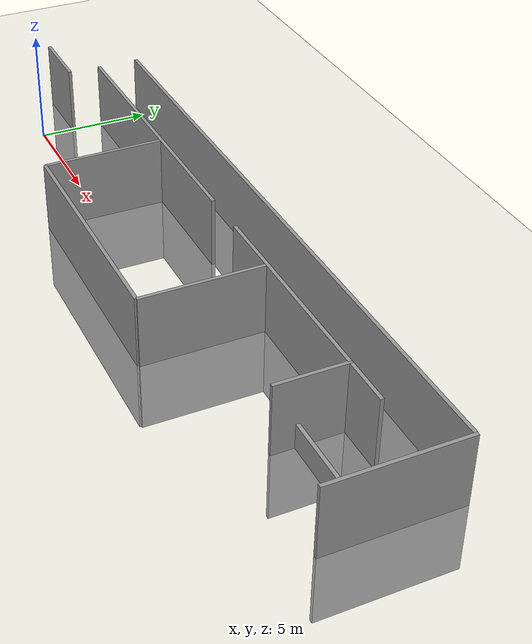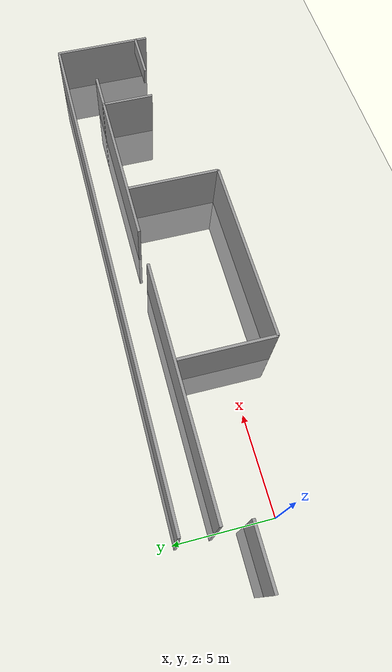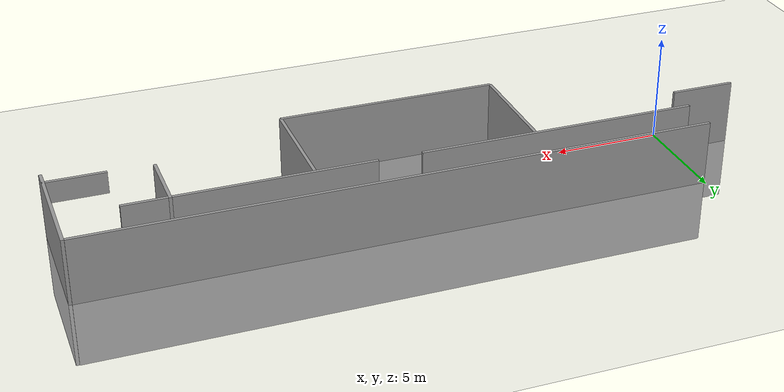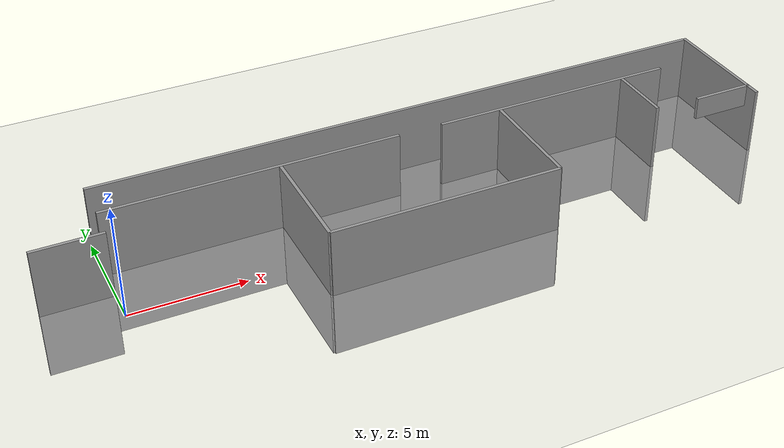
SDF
<sdf version="1.6">
 <world name="default">
  <light name="sun" type="directional">
   <cast_shadows>0</cast_shadows>
   <pose>0 0 10 0 -0 0</pose>
   <diffuse>0.8 0.8 0.8 1</diffuse>
   <specular>0.1 0.1 0.1 1</specular>
   <attenuation>
    <range>1000</range>
    <constant>0.9</constant>
    <linear>0.01</linear>
    <quadratic>0.001</quadratic>
   </attenuation>
   <direction>-0.5 0.5 -1</direction>
  </light>
  <model name="ground_plane">
   <static>1</static>
   <link name="link">
    <collision name="collision">
     <geometry><plane><normal>0 0 1</normal><size>100 100</size></plane></geometry>
     <surface><friction><ode><mu>100</mu><mu2>50</mu2></ode></friction></surface>
    </collision>
    <visual name="visual">
     <cast_shadows>0</cast_shadows>
     <geometry><plane><normal>0 0 1</normal><size>100 100</size></plane></geometry>
     <material>
      <script><uri>file://media/materials/scripts/gazebo.material</uri><name>Gazebo/Grey</name></script>
     </material>
    </visual>
   </link>
  </model>
  <gravity>0 0 -9.8</gravity>
  <magnetic_field>6e-06 2.3e-05 -4.2e-05</magnetic_field>
  <atmosphere type="adiabatic"/>
  <physics name="default_physics" default="0" type="ode">
   <max_step_size>0.001</max_step_size>
   <real_time_factor>1</real_time_factor>
   <real_time_update_rate>1000</real_time_update_rate>
  </physics>
  <scene><ambient>0.4 0.4 0.4 1</ambient><background>0.7 0.7 0.7 1</background><shadows>1</shadows></scene>
  <spherical_coordinates>
   <surface_model>EARTH_WGS84</surface_model>
   <latitude_deg>0</latitude_deg>
   <longitude_deg>0</longitude_deg>
   <elevation>0</elevation>
   <heading_deg>0</heading_deg>
  </spherical_coordinates>
  <model name="Corridor">
   <static>1</static>
   <link name="Wall_1">
    <pose>0 1.5 0 0 0 1.57</pose>
    <collision name="Wall_1_Collision">
     <geometry><box><size>3 0.15 6</size></box></geometry>
     <pose>0 1.5 0 0 0 1.57</pose>
    </collision>
    <visual name="Wall_1_Visual">
     <pose>0 1.5 0 0 0 0</pose>
     <geometry><box><size>0.15 3 6</size></box></geometry>
     <material>
      <script><uri>file://media/materials/scripts/gazebo.material</uri><name>Gazebo/Grey</name></script>
      <ambient>1 1 1 1</ambient>
     </material>
    </visual>
    <pose>0 1.5 0 0 0 0</pose>
   </link>
   <link name="Wall_2">
    <pose>6.5 2.925 0 0 0 0</pose>
    <collision name="Wall_2_Collision"><geometry><box><size>13 0.15 6</size></box></geometry></collision>
    <visual name="Wall_2_Visual">
     <geometry><box><size>13 0.15 6</size></box></geometry>
     <material>
      <script><uri>file://media/materials/scripts/gazebo.material</uri><name>Gazebo/Grey</name></script>
      <ambient>1 1 1 1</ambient>
     </material>
    </visual>
   </link>
   <link name="Wall_10">
    <pose>20.55 2.925 0 0 0 0</pose>
    <collision name="Wall_2_Collision"><geometry><box><size>11.11 0.15 6</size></box></geometry></collision>
    <visual name="Wall_2_Visual">
     <geometry><box><size>11.11 0.15 6</size></box></geometry>
     <material>
      <script><uri>file://media/materials/scripts/gazebo.material</uri><name>Gazebo/Grey</name></script>
      <ambient>1 1 1 1</ambient>
     </material>
    </visual>
   </link>
   <link name="Wall_3">
    <pose>14.325 4.755 0 0 0 0</pose>
    <collision name="Wall_3_Collision"><geometry><box><size>28.65 0.15 6</size></box></geometry></collision>
    <visual name="Wall_3_Visual">
     <geometry><box><size>28.65 0.15 6</size></box></geometry>
     <material>
      <script><uri>file://media/materials/scripts/gazebo.material</uri><name>Gazebo/Grey</name></script>
      <ambient>1 1 1 1</ambient>
     </material>
    </visual>
   </link>
   <link name="Wall_4">
    <pose>28.725 2.025 0 0 0 0</pose>
    <collision name="Wall_4_Collision"><geometry><box><size>0.15 5.57 6</size></box></geometry></collision>
    <visual name="Wall_4_Visual">
     <geometry><box><size>0.15 5.57 6</size></box></geometry>
     <material>
      <script><uri>file://media/materials/scripts/gazebo.material</uri><name>Gazebo/Grey</name></script>
      <ambient>1 1 1 1</ambient>
     </material>
    </visual>
   </link>
   <link name="Wall_5">
    <pose>24.025 1.5 0 0 0 0</pose>
    <collision name="Wall_5_Collision"><geometry><box><size>0.15 3 6</size></box></geometry></collision>
    <visual name="Wall_5_Visual">
     <geometry><box><size>0.15 3 6</size></box></geometry>
     <material>
      <script><uri>file://media/materials/scripts/gazebo.material</uri><name>Gazebo/Grey</name></script>
      <ambient>1 1 1 1</ambient>
     </material>
    </visual>
   </link>
   <link name="Wall_6">
    <pose>27.405 -0.075 2.5 0 0 0</pose>
    <collision name="Wall_5_Collision"><geometry><box><size>2.74 0.15 1</size></box></geometry></collision>
    <visual name="Wall_6_Visual">
     <geometry><box><size>2.74 0.15 1</size></box></geometry>
     <material>
      <script><uri>file://media/materials/scripts/gazebo.material</uri><name>Gazebo/Grey</name></script>
      <ambient>1 1 1 1</ambient>
     </material>
    </visual>
   </link>
   <link name="Wall_7">
    <pose>7.65 0.305 0 0 0 0</pose>
    <collision name="Wall_7_Collision"><geometry><box><size>0.15 5.09 6</size></box></geometry></collision>
    <visual name="Wall_7_Visual">
     <geometry><box><size>0.15 5.09 6</size></box></geometry>
     <material>
      <script><uri>file://media/materials/scripts/gazebo.material</uri><name>Gazebo/Grey</name></script>
      <ambient>1 1 1 1</ambient>
     </material>
    </visual>
   </link>
   <link name="Wall_8">
    <pose>12.735 -2.24 0 0 0 0</pose>
    <collision name="Wall_8_Collision"><geometry><box><size>10.17 0.15 6</size></box></geometry></collision>
    <visual name="Wall_8_Visual">
     <geometry><box><size>10.17 0.15 6</size></box></geometry>
     <material>
      <script><uri>file://media/materials/scripts/gazebo.material</uri><name>Gazebo/Grey</name></script>
      <ambient>1 1 1 1</ambient>
     </material>
    </visual>
   </link>
   <link name="Wall_9">
    <pose>17.82 0.305 0 0 0 0</pose>
    <collision name="Wall_9_Collision"><geometry><box><size>0.15 5.09 6</size></box></geometry></collision>
    <visual name="Wall_9_Visual">
     <geometry><box><size>0.15 5.09 6</size></box></geometry>
     <material>
      <script><uri>file://media/materials/scripts/gazebo.material</uri><name>Gazebo/Grey</name></script>
      <ambient>1 1 1 1</ambient>
     </material>
    </visual>
   </link>
  </model>
 </world>
</sdf>
